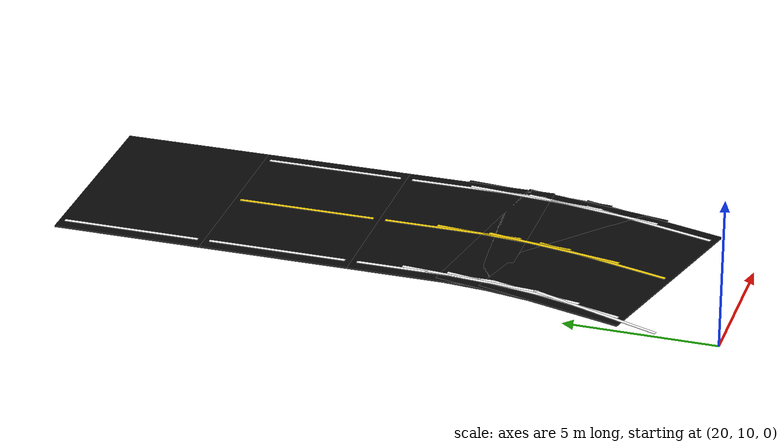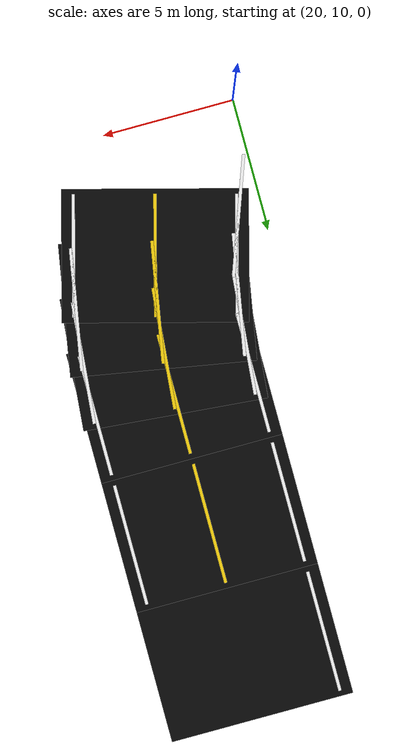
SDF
<sdf version="1.6">
 <world name="curved_road_world">
  <include><uri>model://sun</uri></include>
  <model name="road_left_90_curve_15">
   <static>true</static>
   <pose>24.319 14.824 0.015 0 0 1.308997</pose>
   <link name="road_link">
    <collision name="road_collision"><geometry><box><size>5.000 7.000 0.04</size></box></geometry></collision>
    <visual name="road_visual">
     <geometry><box><size>5.000 7.000 0.04</size></box></geometry>
     <material>
      <ambient>0.025 0.025 0.025 1</ambient>
      <diffuse>0.035 0.035 0.035 1</diffuse>
      <specular>0.01 0.01 0.01 1</specular>
     </material>
    </visual>
   </link>
  </model>
  <model name="road_left_90_curve_16">
   <static>true</static>
   <pose>24.696 16.527 0.015 0 0 1.396263</pose>
   <link name="road_link">
    <collision name="road_collision"><geometry><box><size>5.000 7.000 0.04</size></box></geometry></collision>
    <visual name="road_visual">
     <geometry><box><size>5.000 7.000 0.04</size></box></geometry>
     <material>
      <ambient>0.025 0.025 0.025 1</ambient>
      <diffuse>0.035 0.035 0.035 1</diffuse>
      <specular>0.01 0.01 0.01 1</specular>
     </material>
    </visual>
   </link>
  </model>
  <model name="road_left_90_curve_17">
   <static>true</static>
   <pose>24.924 18.257 0.015 0 0 1.483530</pose>
   <link name="road_link">
    <collision name="road_collision"><geometry><box><size>5.000 7.000 0.04</size></box></geometry></collision>
    <visual name="road_visual">
     <geometry><box><size>5.000 7.000 0.04</size></box></geometry>
     <material>
      <ambient>0.025 0.025 0.025 1</ambient>
      <diffuse>0.035 0.035 0.035 1</diffuse>
      <specular>0.01 0.01 0.01 1</specular>
     </material>
    </visual>
   </link>
  </model>
  <model name="road_left_90_curve_18">
   <static>true</static>
   <pose>25.000 20.000 0.015 0 0 1.570796</pose>
   <link name="road_link">
    <collision name="road_collision"><geometry><box><size>5.000 7.000 0.04</size></box></geometry></collision>
    <visual name="road_visual">
     <geometry><box><size>5.000 7.000 0.04</size></box></geometry>
     <material>
      <ambient>0.025 0.025 0.025 1</ambient>
      <diffuse>0.035 0.035 0.035 1</diffuse>
      <specular>0.01 0.01 0.01 1</specular>
     </material>
    </visual>
   </link>
  </model>
  <model name="road_post_curve_straight_01">
   <static>true</static>
   <pose>25.000 25.000 0.015 0 0 1.570796</pose>
   <link name="road_link">
    <collision name="road_collision"><geometry><box><size>5.000 7.000 0.04</size></box></geometry></collision>
    <visual name="road_visual">
     <geometry><box><size>5.000 7.000 0.04</size></box></geometry>
     <material>
      <ambient>0.025 0.025 0.025 1</ambient>
      <diffuse>0.035 0.035 0.035 1</diffuse>
      <specular>0.01 0.01 0.01 1</specular>
     </material>
    </visual>
   </link>
  </model>
  <model name="road_post_curve_straight_02">
   <static>true</static>
   <pose>25.000 30.000 0.015 0 0 1.570796</pose>
   <link name="road_link">
    <collision name="road_collision"><geometry><box><size>5.000 7.000 0.04</size></box></geometry></collision>
    <visual name="road_visual">
     <geometry><box><size>5.000 7.000 0.04</size></box></geometry>
     <material>
      <ambient>0.025 0.025 0.025 1</ambient>
      <diffuse>0.035 0.035 0.035 1</diffuse>
      <specular>0.01 0.01 0.01 1</specular>
     </material>
    </visual>
   </link>
  </model>
  <model name="left_edge_left_90_curve_14">
   <static>true</static>
   <pose>20.928 14.203 0.050 0 0 1.221730</pose>
   <link name="line_link">
    <visual name="line_visual">
     <geometry><box><size>4.600 0.120 0.012</size></box></geometry>
     <material><ambient>1 1 1 1</ambient><diffuse>1 1 1 1</diffuse></material>
    </visual>
   </link>
  </model>
  <model name="left_edge_left_90_curve_15">
   <static>true</static>
   <pose>21.372 15.613 0.050 0 0 1.308997</pose>
   <link name="line_link">
    <visual name="line_visual">
     <geometry><box><size>4.600 0.120 0.012</size></box></geometry>
     <material><ambient>1 1 1 1</ambient><diffuse>1 1 1 1</diffuse></material>
    </visual>
   </link>
  </model>
  <model name="right_edge_left_90_curve_15">
   <static>true</static>
   <pose>27.265 14.034 0.050 0 0 1.308997</pose>
   <link name="line_link">
    <visual name="line_visual">
     <geometry><box><size>4.600 0.120 0.012</size></box></geometry>
     <material><ambient>1 1 1 1</ambient><diffuse>1 1 1 1</diffuse></material>
    </visual>
   </link>
  </model>
  <model name="center_line_left_90_curve_15">
   <static>true</static>
   <pose>24.319 14.824 0.050 0 0 1.308997</pose>
   <link name="line_link">
    <visual name="line_visual">
     <geometry><box><size>4.600 0.120 0.012</size></box></geometry>
     <material><ambient>1 0.85 0.05 1</ambient><diffuse>1 0.85 0.05 1</diffuse></material>
    </visual>
   </link>
  </model>
  <model name="left_edge_left_90_curve_16">
   <static>true</static>
   <pose>21.692 17.057 0.050 0 0 1.396263</pose>
   <link name="line_link">
    <visual name="line_visual">
     <geometry><box><size>4.600 0.120 0.012</size></box></geometry>
     <material><ambient>1 1 1 1</ambient><diffuse>1 1 1 1</diffuse></material>
    </visual>
   </link>
  </model>
  <model name="right_edge_left_90_curve_16">
   <static>true</static>
   <pose>27.700 15.997 0.050 0 0 1.396263</pose>
   <link name="line_link">
    <visual name="line_visual">
     <geometry><box><size>4.600 0.120 0.012</size></box></geometry>
     <material><ambient>1 1 1 1</ambient><diffuse>1 1 1 1</diffuse></material>
    </visual>
   </link>
  </model>
  <model name="center_line_left_90_curve_16">
   <static>true</static>
   <pose>24.696 16.527 0.050 0 0 1.396263</pose>
   <link name="line_link">
    <visual name="line_visual">
     <geometry><box><size>4.600 0.120 0.012</size></box></geometry>
     <material><ambient>1 0.85 0.05 1</ambient><diffuse>1 0.85 0.05 1</diffuse></material>
    </visual>
   </link>
  </model>
  <model name="left_edge_left_90_curve_17">
   <static>true</static>
   <pose>21.886 18.523 0.050 0 0 1.483530</pose>
   <link name="line_link">
    <visual name="line_visual">
     <geometry><box><size>4.600 0.120 0.012</size></box></geometry>
     <material><ambient>1 1 1 1</ambient><diffuse>1 1 1 1</diffuse></material>
    </visual>
   </link>
  </model>
  <model name="right_edge_left_90_curve_17">
   <static>true</static>
   <pose>27.962 17.991 0.050 0 0 1.483530</pose>
   <link name="line_link">
    <visual name="line_visual">
     <geometry><box><size>4.600 0.120 0.012</size></box></geometry>
     <material><ambient>1 1 1 1</ambient><diffuse>1 1 1 1</diffuse></material>
    </visual>
   </link>
  </model>
  <model name="center_line_left_90_curve_17">
   <static>true</static>
   <pose>24.924 18.257 0.050 0 0 1.483530</pose>
   <link name="line_link">
    <visual name="line_visual">
     <geometry><box><size>4.600 0.120 0.012</size></box></geometry>
     <material><ambient>1 0.85 0.05 1</ambient><diffuse>1 0.85 0.05 1</diffuse></material>
    </visual>
   </link>
  </model>
  <model name="left_edge_left_90_curve_18">
   <static>true</static>
   <pose>21.950 20.000 0.050 0 0 1.570796</pose>
   <link name="line_link">
    <visual name="line_visual">
     <geometry><box><size>4.600 0.120 0.012</size></box></geometry>
     <material><ambient>1 1 1 1</ambient><diffuse>1 1 1 1</diffuse></material>
    </visual>
   </link>
  </model>
  <model name="right_edge_left_90_curve_18">
   <static>true</static>
   <pose>28.050 20.000 0.050 0 0 1.570796</pose>
   <link name="line_link">
    <visual name="line_visual">
     <geometry><box><size>4.600 0.120 0.012</size></box></geometry>
     <material><ambient>1 1 1 1</ambient><diffuse>1 1 1 1</diffuse></material>
    </visual>
   </link>
  </model>
  <model name="center_line_left_90_curve_18">
   <static>true</static>
   <pose>25.000 20.000 0.050 0 0 1.570796</pose>
   <link name="line_link">
    <visual name="line_visual">
     <geometry><box><size>4.600 0.120 0.012</size></box></geometry>
     <material><ambient>1 0.85 0.05 1</ambient><diffuse>1 0.85 0.05 1</diffuse></material>
    </visual>
   </link>
  </model>
  <model name="left_edge_post_curve_straight_01">
   <static>true</static>
   <pose>21.950 25.000 0.050 0 0 1.570796</pose>
   <link name="line_link">
    <visual name="line_visual">
     <geometry><box><size>4.600 0.120 0.012</size></box></geometry>
     <material><ambient>1 1 1 1</ambient><diffuse>1 1 1 1</diffuse></material>
    </visual>
   </link>
  </model>
  <model name="right_edge_post_curve_straight_01">
   <static>true</static>
   <pose>28.050 25.000 0.050 0 0 1.570796</pose>
   <link name="line_link">
    <visual name="line_visual">
     <geometry><box><size>4.600 0.120 0.012</size></box></geometry>
     <material><ambient>1 1 1 1</ambient><diffuse>1 1 1 1</diffuse></material>
    </visual>
   </link>
  </model>
  <model name="center_line_post_curve_straight_01">
   <static>true</static>
   <pose>25.000 25.000 0.050 0 0 1.570796</pose>
   <link name="line_link">
    <visual name="line_visual">
     <geometry><box><size>4.600 0.120 0.012</size></box></geometry>
     <material><ambient>1 0.85 0.05 1</ambient><diffuse>1 0.85 0.05 1</diffuse></material>
    </visual>
   </link>
  </model>
  <model name="left_edge_post_curve_straight_02">
   <static>true</static>
   <pose>21.950 30.000 0.050 0 0 1.570796</pose>
   <link name="line_link">
    <visual name="line_visual">
     <geometry><box><size>4.600 0.120 0.012</size></box></geometry>
     <material><ambient>1 1 1 1</ambient><diffuse>1 1 1 1</diffuse></material>
    </visual>
   </link>
  </model>
 </world>
</sdf>
